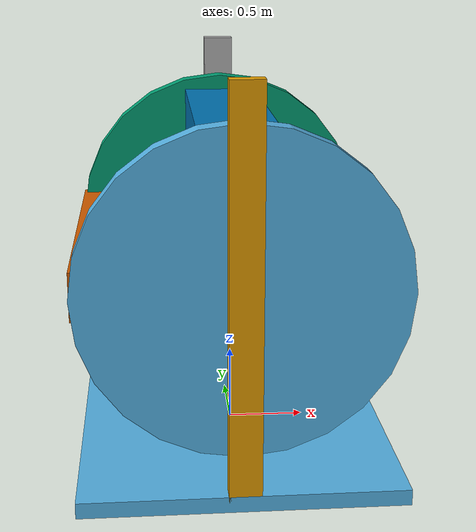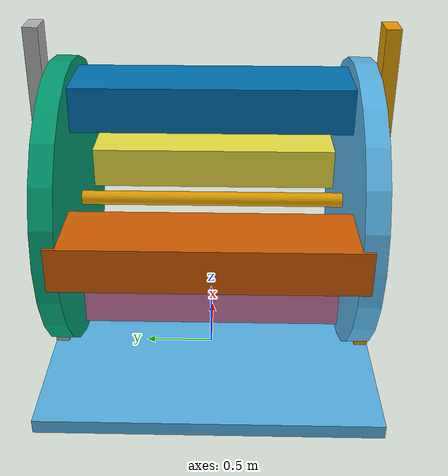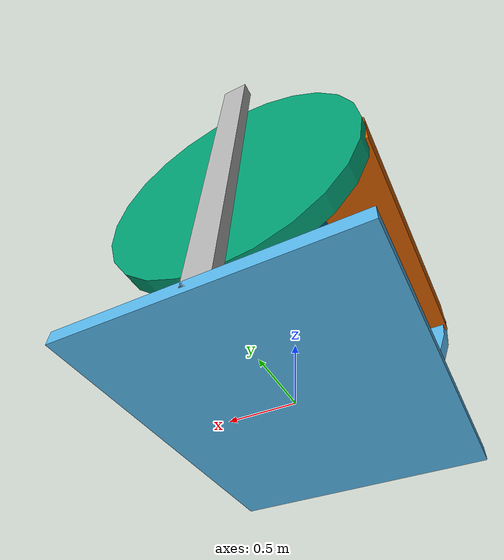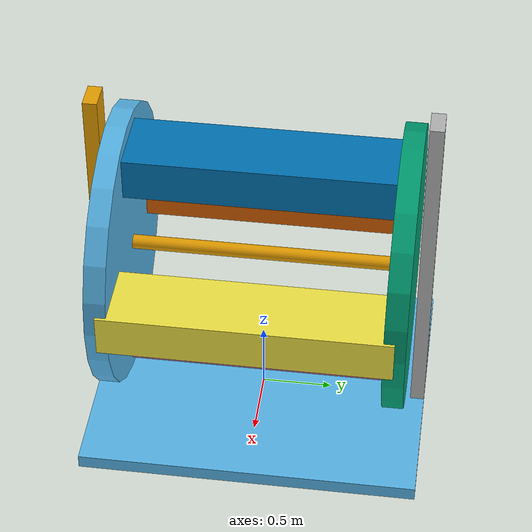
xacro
<?xml version="1.0"?>
<robot xmlns:xacro="https://www.ros.org/wiki/xacro" name="growbot">
	<xacro:include filename="$(find growbot_sim)/urdf/macros.xacro" />
	<xacro:include filename="$(find growbot_sim)/urdf/components/carousel.xacro" />

	<xacro:property name="chassis_support_width" value="0.2" />
	<xacro:property name="chassis_support_length" value="0.1" />
	<xacro:property name="chassis_support_height" value="2.5" />
	<xacro:property name="chassis_support_mass" value="5" />
	<xacro:property name="chassis_mass" value="5" />

	<xacro:property name="carousel_offset" value="1.3" />

	<link name="chassis_support_left_link">
		<visual>
			<origin xyz="0 0 0" rpy="0 0 0" />
			<geometry>
				<box size="${chassis_support_width} ${chassis_support_length} ${chassis_support_height}" />
			</geometry>
		</visual>
		<collision>
			<origin xyz="0 0 0" rpy="0 0 0" />
			<geometry>
				<box size="${chassis_support_width} ${chassis_support_length} ${chassis_support_height}" />
			</geometry>
		</collision>
		<inertial>
			<mass value="${chassis_support_mass}"/>
			<origin xyz="0 0 0" rpy="0 0 0" />
			<xacro:box_inertia m="${chassis_support_mass}" x="${chassis_support_width}" y="${chassis_support_length}" z="${chassis_support_height}" />
		</inertial>
	</link>

	<link name="chassis_support_right_link">
		<visual>
			<origin xyz="0 0 0" rpy="0 0 0" />
			<geometry>
				<box size="${chassis_support_width} ${chassis_support_length} ${chassis_support_height}" />
			</geometry>
		</visual>
		<collision>
			<origin xyz="0 0 0" rpy="0 0 0" />
			<geometry>
				<box size="${chassis_support_width} ${chassis_support_length} ${chassis_support_height}" />
			</geometry>
		</collision>
		<inertial>
			<mass value="${chassis_support_mass}"/>
			<origin xyz="0 0 0" rpy="0 0 0" />
			<xacro:box_inertia m="${chassis_support_mass}" x="${chassis_support_width}" y="${chassis_support_length}" z="${chassis_support_height}" />
		</inertial>
	</link>

	<joint name="chassis_support_left_join" type="fixed">
		<origin xyz="0 ${carousel_width/2+carousel_wheel_width} ${chassis_support_height/2}" />
		<parent link="base_link"/>
		<child link="chassis_support_left_link" />
		<axis xyz="0 1 0"/>
	</joint>

	<joint name="chassis_support_right_join" type="fixed">
		<origin xyz="0 ${-carousel_width/2-carousel_wheel_width} ${chassis_support_height/2}" />
		<parent link="base_link"/>
		<child link="chassis_support_right_link" />
		<axis xyz="0 1 0"/>
	</joint>

	<link name="base_link">
		<visual>
			<origin xyz="0 0 0" rpy="0 0 0" />
			<geometry>
				<box size="${2*carousel_wheel_radius} ${carousel_width+chassis_support_width*2} 0.1" />
			</geometry>
		</visual>
		<collision>
			<origin xyz="0 0 0" rpy="0 0 0" />
			<geometry>
				<box size="${2*carousel_wheel_radius} ${carousel_width+chassis_support_width*2} 0.1" />
			</geometry>
		</collision>
		<inertial>
			<mass value="${chassis_mass}"/>
			<origin xyz="0 0 0" rpy="0 0 0" />
			<xacro:box_inertia m="${chassis_mass}" x="${2*carousel_wheel_radius}" y="${carousel_width+chassis_support_width*2}" z="0.1" />
		</inertial>
	</link>

	<joint name="carousel_center_join" type="continuous">
		<origin xyz="0 ${-carousel_width/2-chassis_support_length*20/13} 0" />
		<parent link="chassis_support_left_link"/>
		<child link="carousel_center_link" />
		<axis xyz="0 1 0"/>
	</joint>

	<transmission name="carousel_center_trans">
		<type>hardware_interface</type>
		<joint name="carousel_center_join">
			<hardwareInterface>EffortJointInterface</hardwareInterface>
		</joint>
		<actuator name="carousel_center_motor">
			<hardwareInterface>EffortJointInterface</hardwareInterface>
			<mechanicalReduction>1</mechanicalReduction>
		</actuator>
	</transmission>

	<gazebo>
		<plugin name="gazebo_ros_control" filename="libgazebo_ros_control.so">
			<robotNamespace>/growbot</robotNamespace>
		</plugin>
	</gazebo>
</robot>

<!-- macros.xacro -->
<robot name="growbot"
    xmlns:xacro="https://www.ros.org/wiki/xacro">

    <xacro:macro name="box_inertia" params="m x y z">
        <inertia ixx="${m*(y*y+z*z)/12}" ixy = "0" ixz = "0" iyy="${m*(x*x+z*z)/12}" iyz = "0" izz="${m*(x*x+z*z)/12}" />
    </xacro:macro>

    <xacro:macro name="cylinder_inertia" params="m r h">
        <inertia ixx="${m*(3*r*r+h*h)/12}" ixy = "0" ixz = "0" iyy="${m*(3*r*r+h*h)/12}" iyz = "0" izz="${m*r*r/2}" />
    </xacro:macro>

    <material name="red">
        <color rgba="1 0 0 1"/>
    </material>

    <material name="black">
        <color rgba="0.9 0.9 0.9 1"/>
    </material>

    <material name="gray">
        <color rgba="0.7 0.7 0.7 1"/>
    </material>
</robot>

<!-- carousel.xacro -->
<robot name="slambot"
    xmlns:xacro="https://www.ros.org/wiki/xacro">

    <xacro:include filename="$(find growbot_sim)/urdf/components/box_link.xacro" />

    <xacro:property name="carousel_wheel_mass" value="2" />
    <xacro:property name="carousel_wheel_radius" value="1" />
    <xacro:property name="carousel_wheel_width" value="0.15" />
    <xacro:property name="carousel_width" value="2" />
    <xacro:property name="carousel_box_height" value="0.3" />
    <xacro:property name="carousel_box_length" value="0.5" />
    <xacro:property name="carousel_box_weight" value="5" />
    <xacro:property name="carousel_center_radius" value="0.05" />
    <xacro:property name="carousel_center_weight" value="2" />

    <link name="carousel_center_link">
        <visual>
            <origin xyz="0 0 0" rpy="${-pi/2} 0 0" />
            <geometry>
                <cylinder length="${carousel_width}" radius="${carousel_center_radius}" />
            </geometry>
        </visual>
        <collision>
            <origin xyz="0 0 0" rpy="${-pi/2} 0 0" />
            <geometry>
                <cylinder length="${carousel_width}" radius="${carousel_center_radius}" />
            </geometry>
            <material name="red"/>
        </collision>
        <inertial>
            <mass value="${carousel_center_weight}" />
            <origin xyz="0 0 0" rpy="${pi/2} 0 0" />
            <cylinder_inertia m="${carousel_center_weight}" r="${carousel_center_radius}" h="${carousel_wheel_width}" />
        </inertial>
    </link>

    <joint name="carousel_left_wheel_join" type="fixed">
		<origin xyz="0 ${carousel_width/2} 0" />
		<parent link="carousel_center_link"/>
		<child link="carousel_wheel_left_link" />
		<axis xyz="0 1 0"/>
	</joint>

	<joint name="carousel_right_wheel_join" type="fixed">
		<origin xyz="0 ${-carousel_width/2} 0" />
		<parent link="carousel_center_link"/>
		<child link="carousel_wheel_right_link" />
		<axis xyz="0 1 0"/>
	</joint>

    <link name="carousel_wheel_right_link">
        <inertial>
            <mass value="${carousel_wheel_mass}" />
            <origin xyz="0 0 0" rpy="${pi/2} 0 0" />
            <cylinder_inertia m="${carousel_wheel_mass}" r="${carousel_wheel_radius}" h="${carousel_wheel_width}" />
        </inertial>
        <visual>
            <origin xyz="0 0 0" rpy="${pi/2} 0 0" />
            <geometry>
                <cylinder length="${carousel_wheel_width}" radius="${carousel_wheel_radius}" />
            </geometry>
        </visual>
        <collision>
            <origin xyz="0 0 0" rpy="${pi/2} 0 0" />
            <geometry>
                <cylinder length="${carousel_wheel_width}" radius="${carousel_wheel_radius}" />
            </geometry>
            <material name="red"/>
        </collision>
    </link>

    <link name="carousel_wheel_left_link">
        <visual>
            <origin xyz="0 0 0" rpy="${-pi/2} 0 0" />
            <geometry>
                <cylinder length="${carousel_wheel_width}" radius="${carousel_wheel_radius}" />
            </geometry>
        </visual>
        <collision>
            <origin xyz="0 0 0" rpy="${-pi/2} 0 0" />
            <geometry>
                <cylinder length="${carousel_wheel_width}" radius="${carousel_wheel_radius}" />
            </geometry>
            <material name="red"/>
        </collision>
        <inertial>
            <mass value="${carousel_wheel_mass}" />
            <origin xyz="0 0 0" rpy="${pi/2} 0 0" />
            <cylinder_inertia m="${carousel_wheel_mass}" r="${carousel_wheel_radius}" h="${carousel_wheel_width}" />
        </inertial>
    </link>

    <joint name="carousel_box_0_link_join" type="continuous">
        <origin xyz="${carousel_wheel_radius/2+carousel_box_length/2} ${carousel_width/2} 0" />
        <parent link="carousel_wheel_right_link"/>
        <child link="carousel_box_0_link" />
        <axis xyz="0 1 0"/>
    </joint>

    <joint name="carousel_box_1_link_join" type="continuous">
        <origin xyz="0 ${carousel_width/2} ${carousel_wheel_radius/2+carousel_box_length/2}" />
        <parent link="carousel_wheel_right_link"/>
        <child link="carousel_box_1_link" />
        <axis xyz="0 1 0"/>
    </joint>

    <joint name="carousel_box_2_link_join" type="continuous">
        <origin xyz="${-carousel_wheel_radius/2-carousel_box_length/2} ${carousel_width/2} 0" />
        <parent link="carousel_wheel_right_link"/>
        <child link="carousel_box_2_link" />
        <axis xyz="0 1 0"/>
    </joint>

    <joint name="carousel_box_3_link_join" type="continuous">
        <origin xyz="0 ${carousel_width/2} ${-carousel_wheel_radius/2-carousel_box_length/2}" />
        <parent link="carousel_wheel_right_link"/>
        <child link="carousel_box_3_link" />
        <axis xyz="0 1 0"/>
    </joint>

    <box_link name="carousel_box_0_link" m="${carousel_box_weight}" x="${carousel_box_length}" y="${carousel_width}" z="${carousel_box_height}" />

    <box_link name="carousel_box_1_link" m="${carousel_box_weight}" x="${carousel_box_length}" y="${carousel_width}" z="${carousel_box_height}" />

    <box_link name="carousel_box_2_link" m="${carousel_box_weight}" x="${carousel_box_length}" y="${carousel_width}" z="${carousel_box_height}" />

    <box_link name="carousel_box_3_link" m="${carousel_box_weight}" x="${carousel_box_length}" y="${carousel_width}" z="${carousel_box_height}" />

</robot>

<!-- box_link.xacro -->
<robot name="growbot"
    xmlns:xacro="https://www.ros.org/wiki/xacro">

    <xacro:macro name="box_link" params="name x y z m">
        <link name="${name}">
            <visual>
                <origin xyz="0 0 0" rpy="0 0 0" />
                <geometry>
                    <box size="${x} ${y} ${z}" />
                </geometry>
            </visual>
            <collision>
                <origin xyz="0 0 0" rpy="0 0 0" />
                <geometry>
                    <box size="${x} ${y} ${z}" />
                </geometry>
            </collision>
            <inertial>
                <mass value="${m}" />
                <origin xyz="0 0 0" rpy="0 0 0" />
                <box_inertia m="${m}" x="${x}" y="${y}" z="${z}" />
            </inertial>
        </link>
    </xacro:macro>
</robot>
